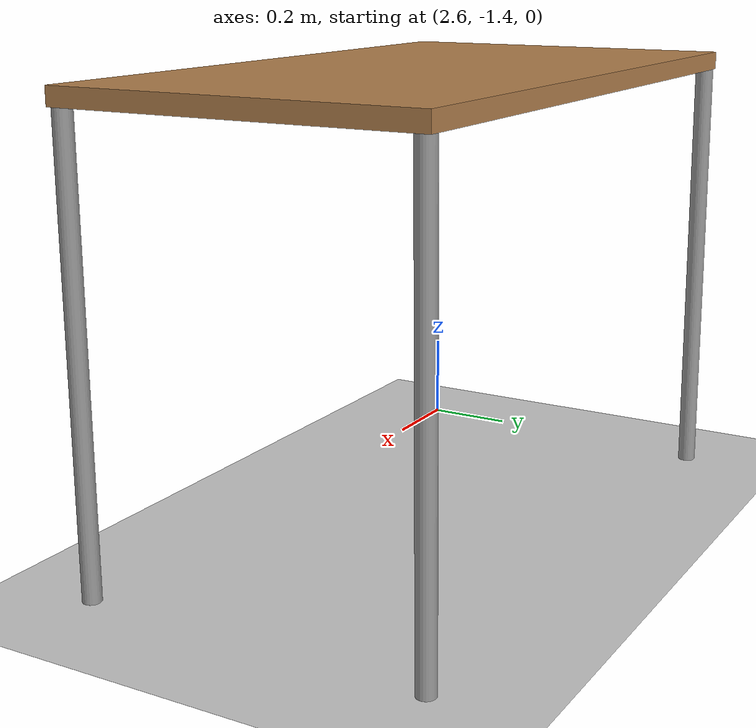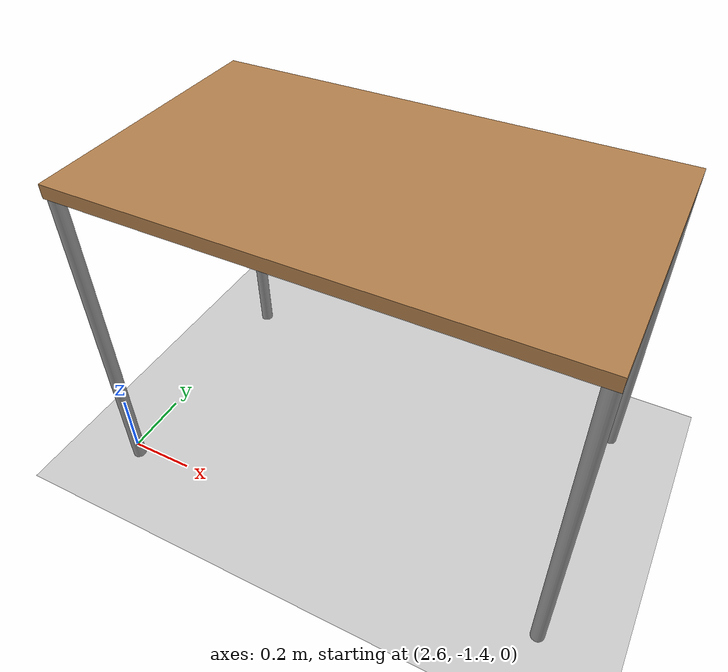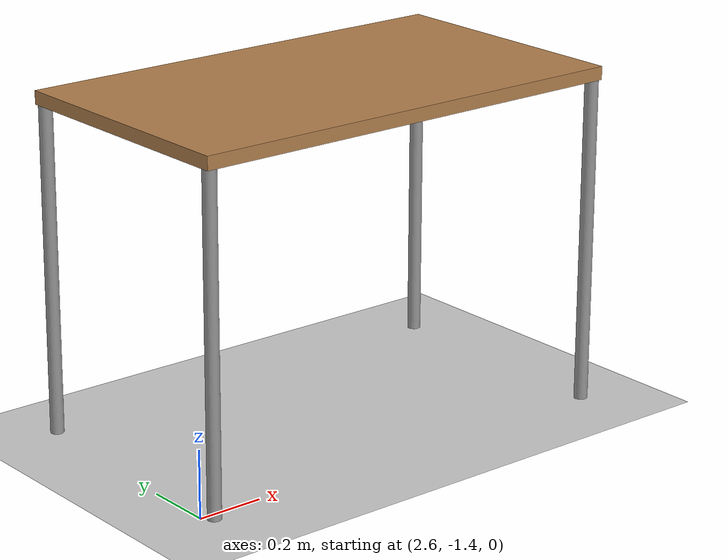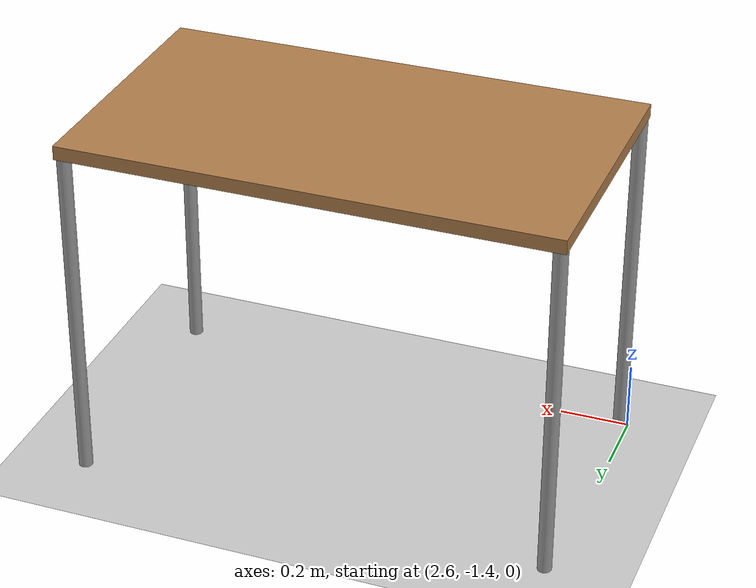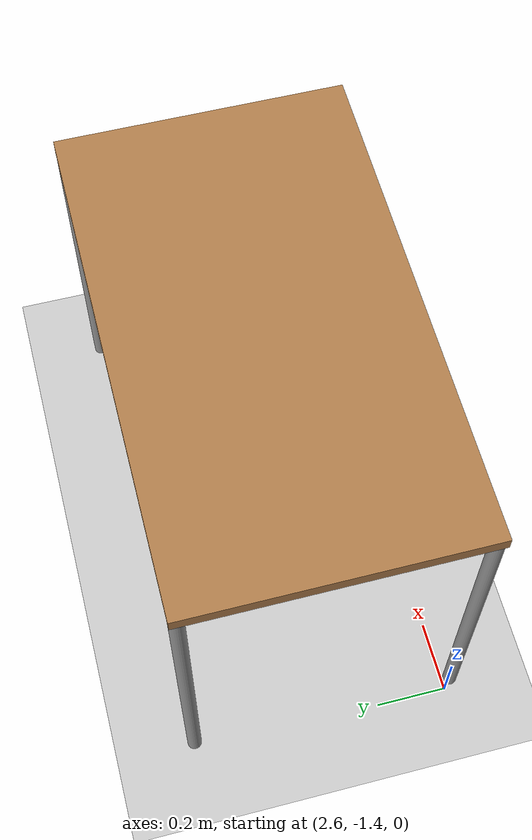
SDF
<sdf version="1.6">
 <world name="default">
  <physics name="default_physics" default="0" type="ode">
   <real_time_update_rate>500</real_time_update_rate>
   <max_step_size>0.002</max_step_size>
   <ode>
    <solver>
     <type>quick</type>
     <iters>100</iters>
     <sor>1.3</sor>
     <use_dynamic_moi_rescaling>0</use_dynamic_moi_rescaling>
    </solver>
    <constraints>
     <cfm>0.0001</cfm>
     <erp>0.2</erp>
     <contact_max_correcting_vel>100</contact_max_correcting_vel>
     <contact_surface_layer>0.001</contact_surface_layer>
    </constraints>
   </ode>
   <real_time_factor>1</real_time_factor>
  </physics>
  <light name="sun" type="directional">
   <pose>0 0 10 0 -0 0</pose>
   <diffuse>0.8 0.8 0.8 1</diffuse>
   <specular>0.1 0.1 0.1 1</specular>
   <attenuation>
    <range>1000</range>
    <constant>0.9</constant>
    <linear>0.01</linear>
    <quadratic>0.001</quadratic>
   </attenuation>
   <direction>-0.5 0.5 -1</direction>
  </light>
  <model name="ground_plane">
   <static>1</static>
   <link name="link">
    <collision name="collision">
     <geometry><plane><normal>0 0 1</normal><size>100 100</size></plane></geometry>
     <surface><friction><ode><mu>100</mu><mu2>50</mu2></ode></friction></surface>
    </collision>
    <visual name="visual">
     <cast_shadows>0</cast_shadows>
     <geometry><plane><normal>0 0 1</normal><size>100 100</size></plane></geometry>
     <material>
      <script><uri>file://media/materials/scripts/gazebo.material</uri><name>Gazebo/Grey</name></script>
     </material>
    </visual>
   </link>
  </model>
  <gravity>0 0 -9.8</gravity>
  <magnetic_field>6e-06 2.3e-05 -4.2e-05</magnetic_field>
  <atmosphere type="adiabatic"/>
  <scene><ambient>0.4 0.4 0.4 1</ambient><background>0.7 0.7 0.7 1</background><shadows>1</shadows></scene>
  <spherical_coordinates>
   <surface_model>EARTH_WGS84</surface_model>
   <latitude_deg>0</latitude_deg>
   <longitude_deg>0</longitude_deg>
   <elevation>0</elevation>
   <heading_deg>0</heading_deg>
  </spherical_coordinates>
  <model name="table">
   <static>0</static>
   <link name="link">
    <collision name="surface">
     <pose>0 0 1 0 -0 0</pose>
     <geometry><box><size>1.5 0.8 0.03</size></box></geometry>
     <surface><friction><ode><mu>0.6</mu><mu2>0.6</mu2></ode></friction></surface>
    </collision>
    <visual name="visual1">
     <pose>0 0 1 0 -0 0</pose>
     <geometry><box><size>1.4 0.8 0.04</size></box></geometry>
     <material>
      <script><uri>file://media/materials/scripts/gazebo.material</uri><name>Gazebo/Wood</name></script>
     </material>
    </visual>
    <collision name="front_left_leg">
     <pose>0.68 0.38 0.5 0 -0 0</pose>
     <geometry><cylinder><radius>0.02</radius><length>1</length></cylinder></geometry>
    </collision>
    <visual name="front_left_leg">
     <pose>0.68 0.38 0.5 0 -0 0</pose>
     <geometry><cylinder><radius>0.02</radius><length>1</length></cylinder></geometry>
     <material>
      <script><uri>file://media/materials/scripts/gazebo.material</uri><name>Gazebo/Grey</name></script>
     </material>
    </visual>
    <collision name="front_right_leg">
     <pose>0.68 -0.38 0.5 0 -0 0</pose>
     <geometry><cylinder><radius>0.02</radius><length>1</length></cylinder></geometry>
    </collision>
    <visual name="front_right_leg">
     <pose>0.68 -0.38 0.5 0 -0 0</pose>
     <geometry><cylinder><radius>0.02</radius><length>1</length></cylinder></geometry>
     <material>
      <script><uri>file://media/materials/scripts/gazebo.material</uri><name>Gazebo/Grey</name></script>
     </material>
    </visual>
    <collision name="back_right_leg">
     <pose>-0.68 -0.38 0.5 0 -0 0</pose>
     <geometry><cylinder><radius>0.02</radius><length>1</length></cylinder></geometry>
    </collision>
    <visual name="back_right_leg">
     <pose>-0.68 -0.38 0.5 0 -0 0</pose>
     <geometry><cylinder><radius>0.02</radius><length>1</length></cylinder></geometry>
     <material>
      <script><uri>file://media/materials/scripts/gazebo.material</uri><name>Gazebo/Grey</name></script>
     </material>
    </visual>
    <collision name="back_left_leg">
     <pose>-0.68 0.38 0.5 0 -0 0</pose>
     <geometry><cylinder><radius>0.02</radius><length>1</length></cylinder></geometry>
    </collision>
    <visual name="back_left_leg">
     <pose>-0.68 0.38 0.5 0 -0 0</pose>
     <geometry><cylinder><radius>0.02</radius><length>1</length></cylinder></geometry>
     <material>
      <script><uri>file://media/materials/scripts/gazebo.material</uri><name>Gazebo/Grey</name></script>
     </material>
    </visual>
    <inertial>
     <inertia><ixx>1</ixx><ixy>0</ixy><ixz>0</ixz><iyy>1</iyy><iyz>0</iyz><izz>1</izz></inertia>
     <mass>1</mass>
    </inertial>
   </link>
   <pose>3.30918 -1.04402 -1.9e-05 0 -0 0</pose>
  </model>
 </world>
</sdf>
